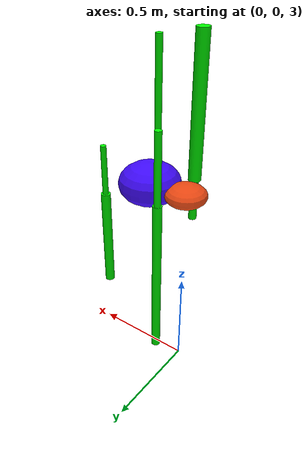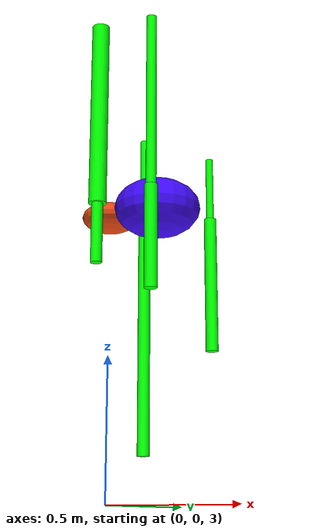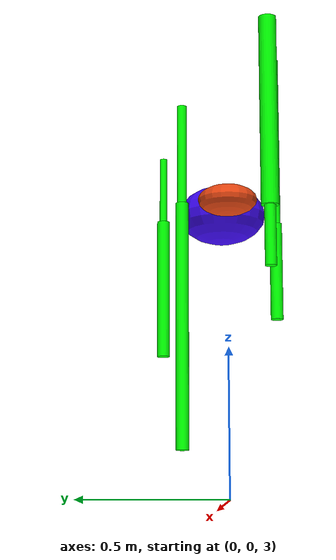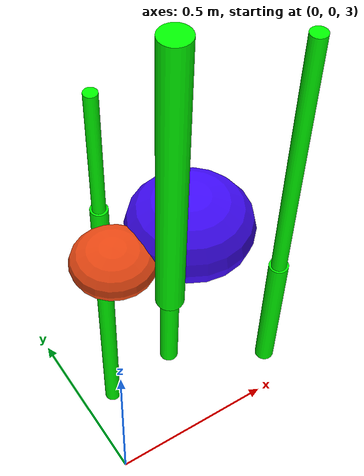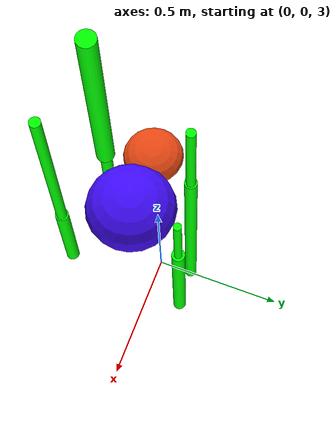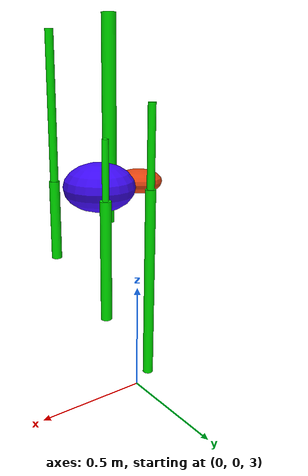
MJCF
<mujoco model="unnamed_model">
  <option timestep="0.01"/>
  <visual>
    <headlight ambient="0.5 0.5 0.5"/>
  </visual>
  <default>
    <default class="/"/>
  </default>
  <worldbody>
    <light name="//unnamed_light_0" class="/" pos="0 0 3" dir="0 0 -1" diffuse="0.5 0.5 0.5"/>
    <geom name="//unnamed_geom_0" class="/" type="plane" size="50 50 0.10000000000000001"/>
    <body name="//unnamed_body_0" pos="0 0 4">
      <joint name="//unnamed_joint_0" class="/" type="free"/>
      <geom name="//unnamed_geom_1" class="/" type="ellipsoid" size="0.10000000000000001 0.10000000000000001 0.050000000000000003" rgba="0.91000000000000003 0.27800000000000002 0.070999999999999994 1" pos="0 0 0"/>
      <geom name="//unnamed_geom_2" class="/" type="ellipsoid" size="0.14999999999999999 0.14999999999999999 0.10000000000000001" rgba="0.247 0.035000000000000003 0.97999999999999998 1" pos="0.20000000000000001 0 0"/>
      <body name="limb1" pos="0.050000000000000003 0.14999999999999999 -0.41736258095042567">
        <geom name="//unnamed_geom_3" class="/" type="cylinder" size="0.021947018002448256 0.41736258095042567" rgba="0 1 0 1"/>
        <joint name="limb1_joint" class="/" type="hinge" pos="0 0 0.41736258095042567" axis="0 1 0" range="-45 45"/>
      </body>
      <body name="limb2" pos="0.050000000000000003 -0.14999999999999999 -0.10599128683425332">
        <geom name="//unnamed_geom_4" class="/" type="cylinder" size="0.020154607255945242 0.10599128683425332" rgba="0 1 0 1"/>
        <joint name="limb2_joint" class="/" type="hinge" pos="0 0 0.10599128683425332" axis="0 1 0" range="-45 45"/>
      </body>
      <body name="limb3" pos="0.29999999999999999 0.20000000000000001 -0.24179809837566638">
        <geom name="//unnamed_geom_5" class="/" type="cylinder" size="0.021942566031092577 0.24179809837566638" rgba="0 1 0 1"/>
        <joint name="limb3_joint" class="/" type="hinge" pos="0 0 0.24179809837566638" axis="0 1 0" range="-45 45"/>
      </body>
      <body name="limb4" pos="0.29999999999999999 -0.20000000000000001 -0.17363999800135357">
        <geom name="//unnamed_geom_6" class="/" type="cylinder" size="0.022091268898169154 0.17363999800135357" rgba="0 1 0 1"/>
        <joint name="limb4_joint" class="/" type="hinge" pos="0 0 0.17363999800135357" axis="0 1 0" range="-45 45"/>
      </body>
      <body name="back_limb1" pos="0.050000000000000003 0.14999999999999999 0.1727632807519838">
        <geom name="//unnamed_geom_7" class="/" type="cylinder" size="0.016447772134967835 0.1727632807519838" rgba="0 1 0 1"/>
        <joint name="back_limb1_joint" class="/" type="hinge" pos="0 0 -0.1727632807519838" axis="0 1 0" range="-45 45"/>
      </body>
      <body name="back_limb2" pos="0.050000000000000003 -0.14999999999999999 0.34141904243315113">
        <geom name="//unnamed_geom_8" class="/" type="cylinder" size="0.03119960156274789 0.34141904243315113" rgba="0 1 0 1"/>
        <joint name="back_limb2_joint" class="/" type="hinge" pos="0 0 -0.34141904243315113" axis="0 1 0" range="-45 45"/>
      </body>
      <body name="back_limb3" pos="0.29999999999999999 0.20000000000000001 0.11597964028382349">
        <geom name="//unnamed_geom_9" class="/" type="cylinder" size="0.013174858536553875 0.11597964028382349" rgba="0 1 0 1"/>
        <joint name="back_limb3_joint" class="/" type="hinge" pos="0 0 -0.11597964028382349" axis="0 1 0" range="-45 45"/>
      </body>
      <body name="back_limb4" pos="0.29999999999999999 -0.20000000000000001 0.30854151273228192">
        <geom name="//unnamed_geom_10" class="/" type="cylinder" size="0.017328892757136175 0.30854151273228192" rgba="0 1 0 1"/>
        <joint name="back_limb4_joint" class="/" type="hinge" pos="0 0 -0.30854151273228192" axis="0 1 0" range="-45 45"/>
      </body>
    </body>
  </worldbody>
  <actuator>
    <motor name="motor_limb1_joint" class="/" ctrllimited="true" ctrlrange="-45 45" gear="1" joint="limb1_joint"/>
    <motor name="motor_limb2_joint" class="/" ctrllimited="true" ctrlrange="-45 45" gear="1" joint="limb2_joint"/>
    <motor name="motor_limb3_joint" class="/" ctrllimited="true" ctrlrange="-45 45" gear="1" joint="limb3_joint"/>
    <motor name="motor_limb4_joint" class="/" ctrllimited="true" ctrlrange="-45 45" gear="1" joint="limb4_joint"/>
    <motor name="motor_back_back_limb1_joint" class="/" ctrllimited="true" ctrlrange="-45 45" gear="1" joint="back_limb1_joint"/>
    <motor name="motor_back_back_limb2_joint" class="/" ctrllimited="true" ctrlrange="-45 45" gear="1" joint="back_limb2_joint"/>
    <motor name="motor_back_back_limb3_joint" class="/" ctrllimited="true" ctrlrange="-45 45" gear="1" joint="back_limb3_joint"/>
    <motor name="motor_back_back_limb4_joint" class="/" ctrllimited="true" ctrlrange="-45 45" gear="1" joint="back_limb4_joint"/>
  </actuator>
</mujoco>
